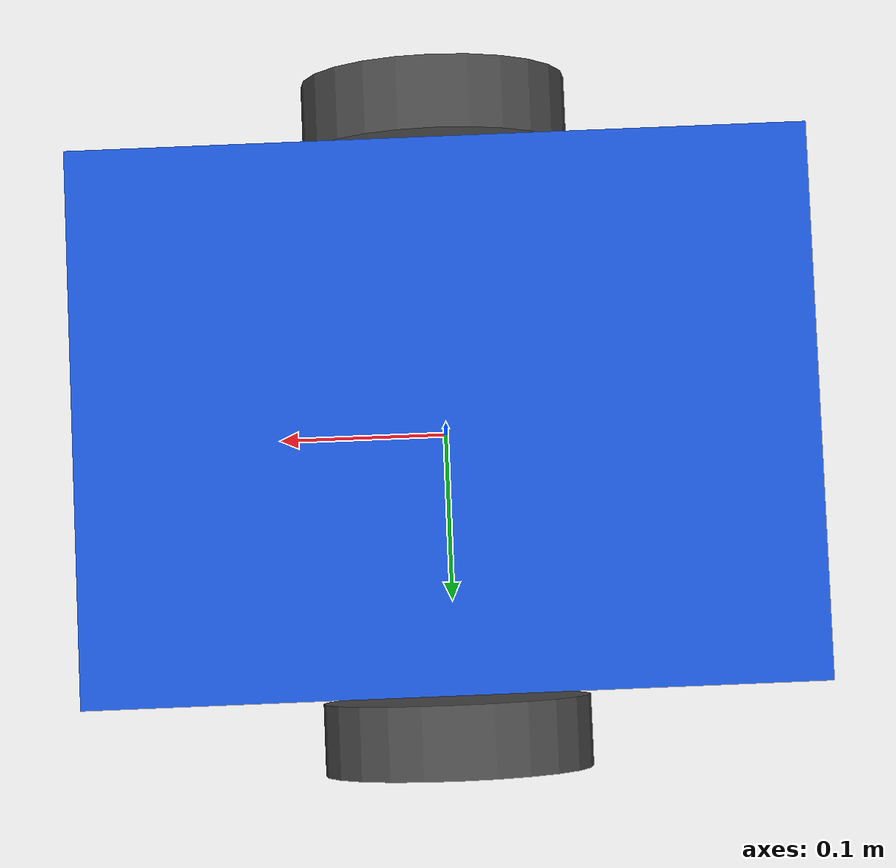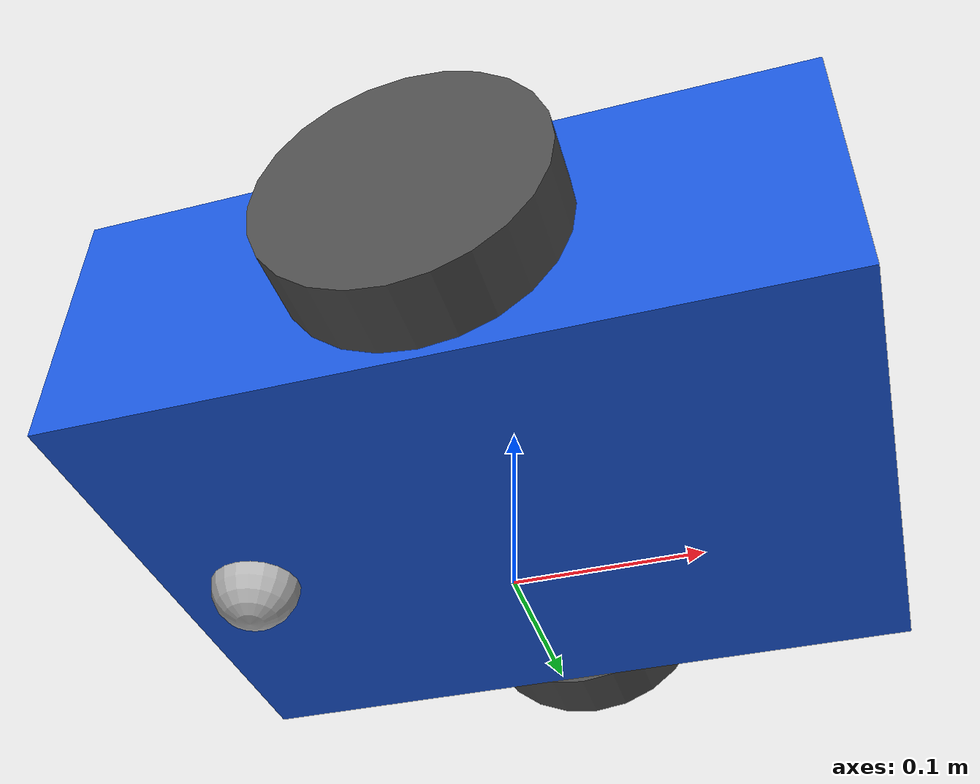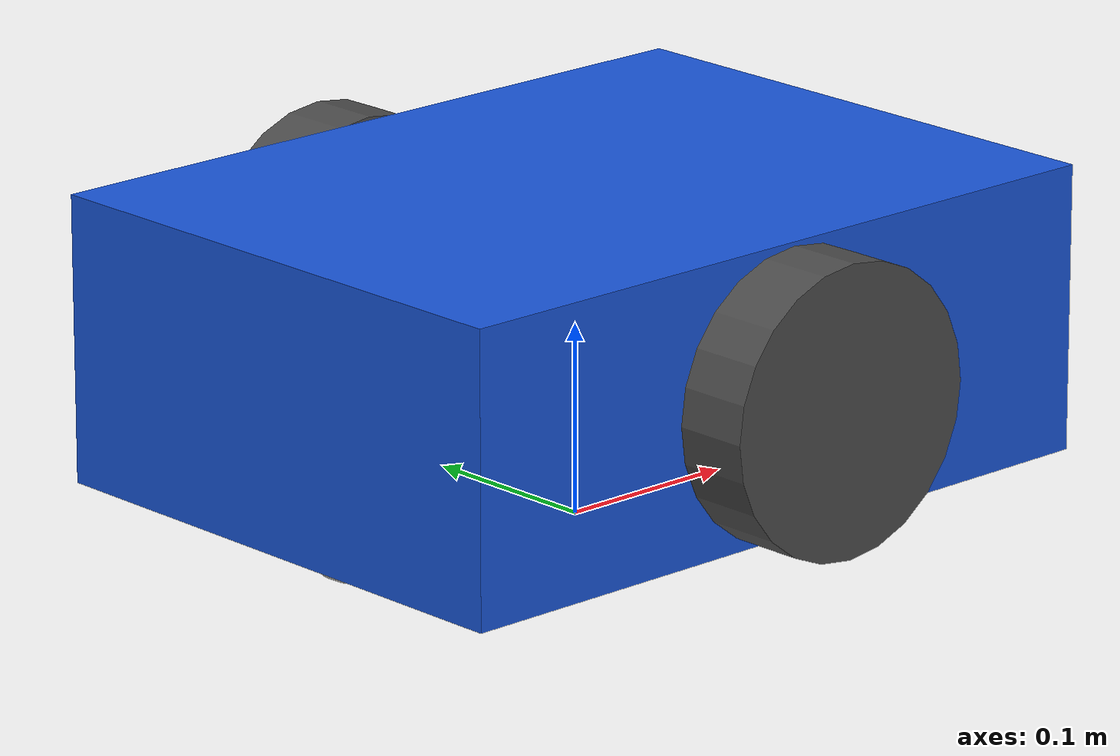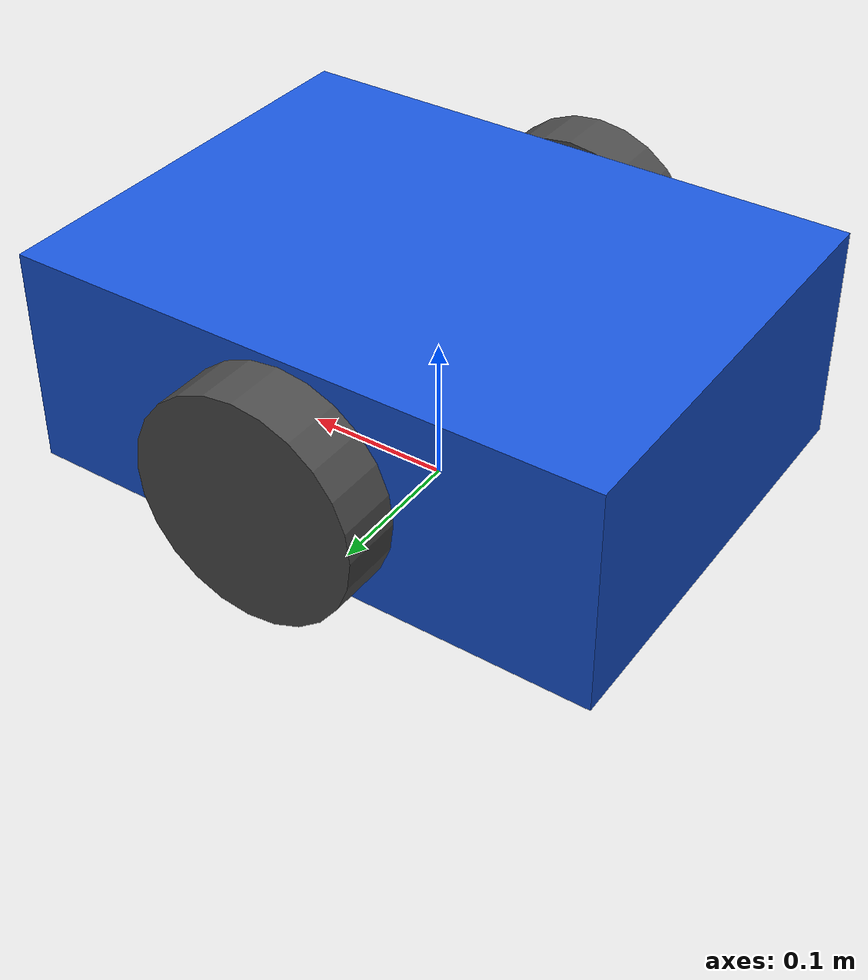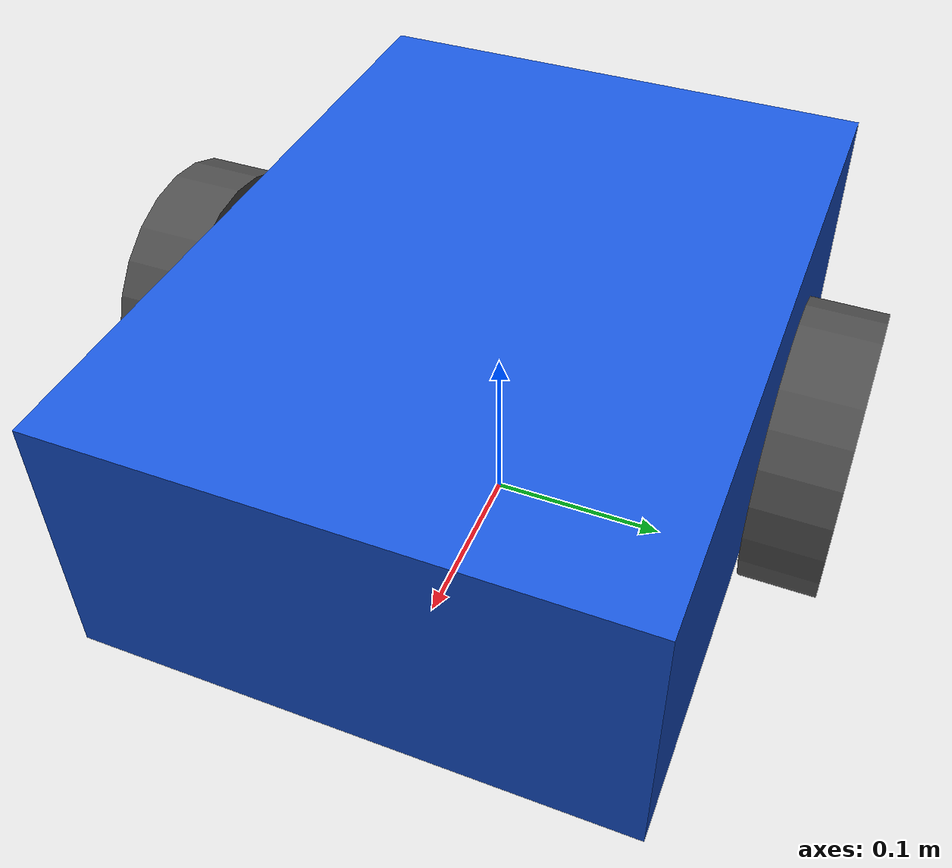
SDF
<?xml version="1.0"?>
<sdf version="1.6">
  <model name="differential_robot">
    <pose>0 0 0.1 0 0 0</pose>
    <link name="base_link">
      <inertial><pose>0 0 0 0 0 0</pose><mass>3.0</mass>
        <inertia><ixx>0.028125</ixx><ixy>0</ixy><ixz>0</ixz><iyy>0.045625</iyy><iyz>0</iyz><izz>0.0625</izz></inertia>
      </inertial>
      <visual name="visual">
        <geometry><box><size>0.4 0.3 0.15</size></box></geometry>
        <material><ambient>0.1 0.34 0.86 1.0</ambient></material>
      </visual>
      <collision name="collision">
        <geometry><box><size>0.4 0.3 0.15</size></box></geometry>
      </collision>
    </link>
    <link name="left_wheel_link">
      <pose>0 0.175 0 0 0 0</pose>
      <inertial><mass>0.3</mass><inertia><ixx>0.00084</ixx><iyy>0.00084</iyy><izz>0.00084</izz></inertia></inertial>
      <visual name="visual">
        <geometry><cylinder><radius>0.075</radius><length>0.04</length></cylinder></geometry>
        <pose>0 0 0 1.5708 0 0</pose>
        <material><ambient>0.3 0.3 0.3 1.0</ambient></material>
      </visual>
      <collision name="collision">
        <geometry><cylinder><radius>0.075</radius><length>0.04</length></cylinder></geometry>
        <pose>0 0 0 1.5708 0 0</pose>
      </collision>
    </link>
    <joint name="base_to_left_wheel" type="revolute">
      <parent>base_link</parent><child>left_wheel_link</child>
      <axis><xyz>0 1 0</xyz><limit><effort>1.0</effort><velocity>10.0</velocity><lower>-3.14159</lower><upper>3.14159</upper></limit></axis>
    </joint>
    <link name="right_wheel_link">
      <pose>0 -0.175 0 0 0 0</pose>
      <inertial><mass>0.3</mass><inertia><ixx>0.00084</ixx><iyy>0.00084</iyy><izz>0.00084</izz></inertia></inertial>
      <visual name="visual">
        <geometry><cylinder><radius>0.075</radius><length>0.04</length></cylinder></geometry>
        <pose>0 0 0 1.5708 0 0</pose>
        <material><ambient>0.3 0.3 0.3 1.0</ambient></material>
      </visual>
      <collision name="collision">
        <geometry><cylinder><radius>0.075</radius><length>0.04</length></cylinder></geometry>
        <pose>0 0 0 1.5708 0 0</pose>
      </collision>
    </link>
    <joint name="base_to_right_wheel" type="revolute">
      <parent>base_link</parent><child>right_wheel_link</child>
      <axis><xyz>0 1 0</xyz><limit><effort>1.0</effort><velocity>10.0</velocity><lower>-3.14159</lower><upper>3.14159</upper></limit></axis>
    </joint>
    <link name="caster_wheel_link">
      <pose>-0.15 0 -0.075 0 0 0</pose>
      <inertial><mass>0.05</mass><inertia><ixx>2e-5</ixx><iyy>2e-5</iyy><izz>2e-5</izz></inertia></inertial>
      <visual name="visual">
        <geometry><sphere><radius>0.025</radius></sphere></geometry>
        <material><ambient>0.7 0.7 0.7 1.0</ambient></material>
      </visual>
      <collision name="collision">
        <geometry><sphere><radius>0.025</radius></sphere></geometry>
      </collision>
    </link>
    <joint name="base_to_caster" type="fixed">
      <parent>base_link</parent><child>caster_wheel_link</child>
    </joint>
    <link name="laser_frame">
      <pose>0.15 0 0.08 0 0 0</pose>
      <inertial><mass>0.001</mass><inertia><ixx>1e-6</ixx><iyy>1e-6</iyy><izz>1e-6</izz></inertia></inertial>
    </link>
    <joint name="base_to_laser" type="fixed">
      <parent>base_link</parent><child>laser_frame</child>
    </joint>
    <plugin name="diff_drive" filename="libgazebo_ros_diff_drive.so">
      <leftJoint>base_to_left_wheel</leftJoint>
      <rightJoint>base_to_right_wheel</rightJoint>
      <wheelSeparation>0.35</wheelSeparation>
      <wheelDiameter>0.15</wheelDiameter>
      <torque>1.0</torque>
      <commandTopic>cmd_vel</commandTopic>
      <odometryTopic>odom</odometryTopic>
      <odometryFrame>odom</odometryFrame>
      <robotBaseFrame>base_link</robotBaseFrame>
      <publishOdomTF>true</publishOdomTF>
    </plugin>
  </model>
</sdf>
